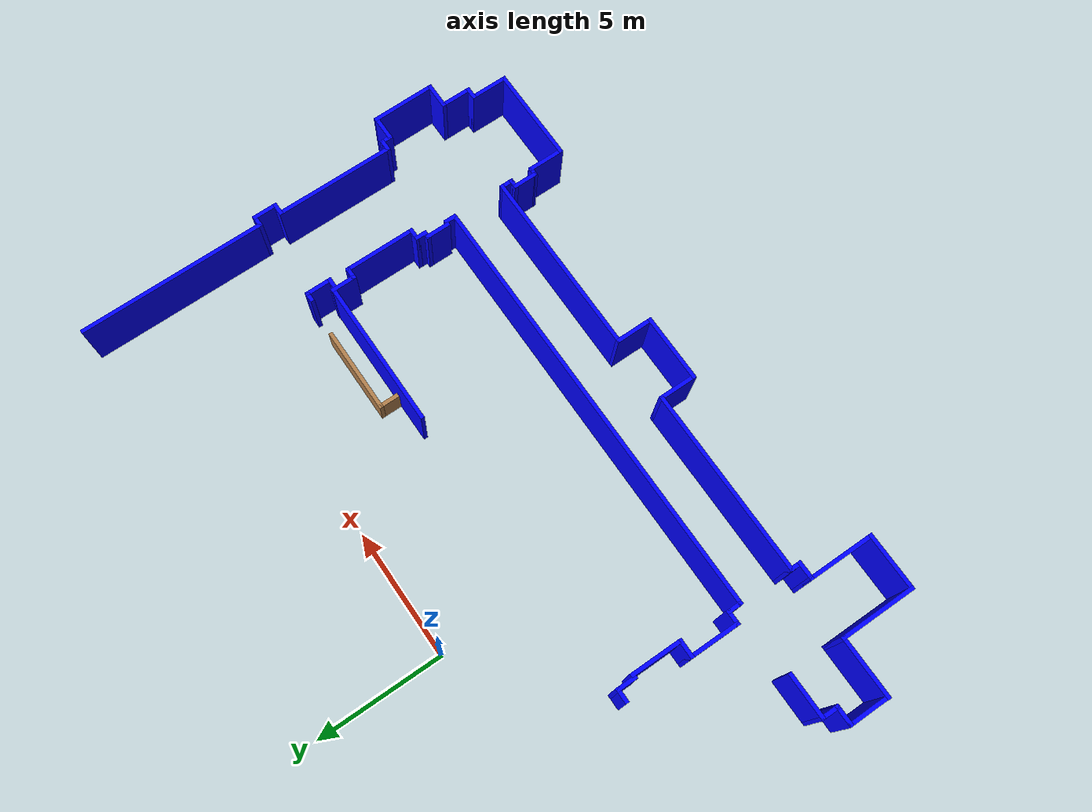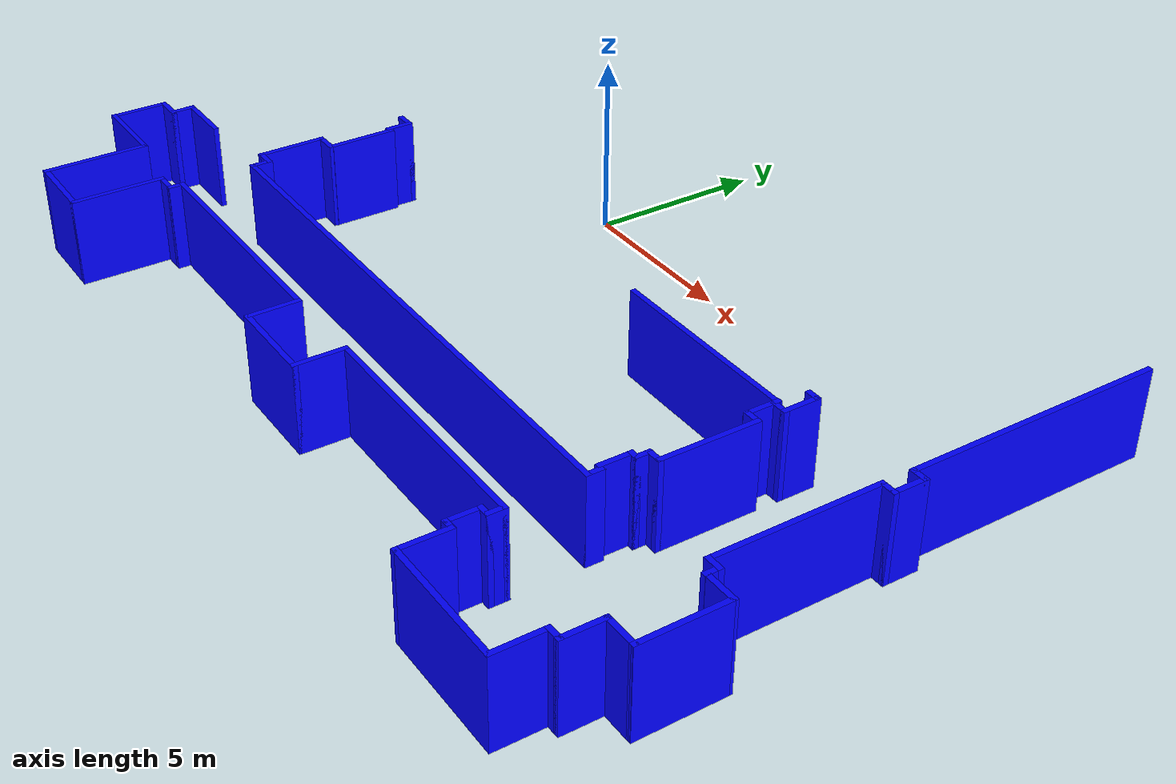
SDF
<sdf version="1.6">
 <model name="A2230_new">
  <pose>3.29262 1.5551 0 0 -0 0</pose>
  <link name="Wall_0">
   <collision name="Wall_0_Collision">
    <geometry><box><size>16.78 0.15 2.5</size></box></geometry>
    <pose>0 0 1.25 0 -0 0</pose>
   </collision>
   <visual name="Wall_0_Visual">
    <pose>0 0 1.25 0 -0 0</pose>
    <geometry><box><size>16.78 0.15 2.5</size></box></geometry>
    <material>
     <ambient>0.0 0.0 1.0 1</ambient>
     <diffuse>0.0 0.0 1.0 1</diffuse>
     <specular>0.0 0.0 1.0 1</specular>
    </material>
    <meta><layer>0</layer></meta>
   </visual>
   <pose>0.709394 -10.3929 0 0 -0 0</pose>
  </link>
  <link name="Wall_151">
   <collision name="Wall_151_Collision">
    <geometry><box><size>0.619 0.15 2.5</size></box></geometry>
    <pose>0 0 1.25 0 -0 0</pose>
   </collision>
   <visual name="Wall_151_Visual">
    <pose>0 0 1.25 0 -0 0</pose>
    <geometry><box><size>0.619 0.15 2.5</size></box></geometry>
    <material>
     <ambient>0.0 0.0 1.0 1</ambient>
     <diffuse>0.0 0.0 1.0 1</diffuse>
     <specular>0.0 0.0 1.0 1</specular>
    </material>
    <meta><layer>0</layer></meta>
   </visual>
   <pose>-7.8475 -9.91068 0 0 -0 0</pose>
  </link>
  <link name="Wall_154">
   <collision name="Wall_154_Collision">
    <geometry><box><size>0.63 0.15 2.5</size></box></geometry>
    <pose>0 0 1.25 0 -0 0</pose>
   </collision>
   <visual name="Wall_154_Visual">
    <pose>0 0 1.25 0 -0 0</pose>
    <geometry><box><size>0.63 0.15 2.5</size></box></geometry>
    <material>
     <ambient>0.0 0.0 1.0 1</ambient>
     <diffuse>0.0 0.0 1.0 1</diffuse>
     <specular>0.0 0.0 1.0 1</specular>
    </material>
    <meta><layer>0</layer></meta>
   </visual>
   <pose>-7.61299 -10.1507 0 0 -0 -1.5708</pose>
  </link>
  <link name="Wall_156">
   <collision name="Wall_156_Collision">
    <geometry><box><size>0.738 0.15 2.5</size></box></geometry>
    <pose>0 0 1.25 0 -0 0</pose>
   </collision>
   <visual name="Wall_156_Visual">
    <pose>0 0 1.25 0 -0 0</pose>
    <geometry><box><size>0.738 0.15 2.5</size></box></geometry>
    <material>
     <ambient>0.0 0.0 1.0 1</ambient>
     <diffuse>0.0 0.0 1.0 1</diffuse>
     <specular>0.0 0.0 1.0 1</specular>
    </material>
    <meta><layer>0</layer></meta>
   </visual>
   <pose>-7.78799 -8.06068 0 0 -0 0</pose>
  </link>
  <link name="Wall_159">
   <collision name="Wall_159_Collision">
    <geometry><box><size>0.811382 0.15 2.5</size></box></geometry>
    <pose>0 0 1.25 0 -0 0</pose>
   </collision>
   <visual name="Wall_159_Visual">
    <pose>0 0 1.25 0 -0 0</pose>
    <geometry><box><size>0.811382 0.15 2.5</size></box></geometry>
    <material>
     <ambient>0.0 0.0 1.0 1</ambient>
     <diffuse>0.0 0.0 1.0 1</diffuse>
     <specular>0.0 0.0 1.0 1</specular>
    </material>
    <meta><layer>0</layer></meta>
   </visual>
   <pose>-7.59855 -5.83255 0 0 -0 -1.5708</pose>
  </link>
  <link name="Wall_161">
   <collision name="Wall_161_Collision">
    <geometry><box><size>0.59 0.15 2.5</size></box></geometry>
    <pose>0 0 1.25 0 -0 0</pose>
   </collision>
   <visual name="Wall_161_Visual">
    <pose>0 0 1.25 0 -0 0</pose>
    <geometry><box><size>0.59 0.15 2.5</size></box></geometry>
    <material>
     <ambient>0.0 0.0 1.0 1</ambient>
     <diffuse>0.0 0.0 1.0 1</diffuse>
     <specular>0.0 0.0 1.0 1</specular>
    </material>
    <meta><layer>0</layer></meta>
   </visual>
   <pose>-7.81855 -5.50193 0 0 -0 3.14159</pose>
  </link>
  <link name="Wall_163">
   <collision name="Wall_163_Collision">
    <geometry><box><size>0.75 0.15 2.5</size></box></geometry>
    <pose>0 0 1.25 0 -0 0</pose>
   </collision>
   <visual name="Wall_163_Visual">
    <pose>0 0 1.25 0 -0 0</pose>
    <geometry><box><size>0.75 0.15 2.5</size></box></geometry>
    <material>
     <ambient>0.0 0.0 1.0 1</ambient>
     <diffuse>0.0 0.0 1.0 1</diffuse>
     <specular>0.0 0.0 1.0 1</specular>
    </material>
    <meta><layer>0</layer></meta>
   </visual>
   <pose>-11.9396 -10.6282 0 0 -0 -1.5708</pose>
  </link>
  <link name="Wall_164">
   <collision name="Wall_164_Collision">
    <geometry><box><size>0.812 0.15 2.5</size></box></geometry>
    <pose>0 0 1.25 0 -0 0</pose>
   </collision>
   <visual name="Wall_164_Visual">
    <pose>0 0 1.25 0 -0 0</pose>
    <geometry><box><size>0.812 0.15 2.5</size></box></geometry>
    <material>
     <ambient>0.0 0.0 1.0 1</ambient>
     <diffuse>0.0 0.0 1.0 1</diffuse>
     <specular>0.0 0.0 1.0 1</specular>
    </material>
    <meta><layer>0</layer></meta>
   </visual>
   <pose>-12.2706 -10.9282 0 0 -0 3.14159</pose>
  </link>
  <link name="Wall_167">
   <collision name="Wall_167_Collision">
    <geometry><box><size>1.662 0.15 2.5</size></box></geometry>
    <pose>0 0 1.25 0 -0 0</pose>
   </collision>
   <visual name="Wall_167_Visual">
    <pose>0 0 1.25 0 -0 0</pose>
    <geometry><box><size>1.662 0.15 2.5</size></box></geometry>
    <material>
     <ambient>0.0 0.0 1.0 1</ambient>
     <diffuse>0.0 0.0 1.0 1</diffuse>
     <specular>0.0 0.0 1.0 1</specular>
    </material>
    <meta><layer>0</layer></meta>
   </visual>
   <pose>-12.6016 -11.6842 0 0 -0 -1.5708</pose>
  </link>
  <link name="Wall_169">
   <collision name="Wall_169_Collision">
    <geometry><box><size>0.5 0.15 2.5</size></box></geometry>
    <pose>0 0 1.25 0 -0 0</pose>
   </collision>
   <visual name="Wall_169_Visual">
    <pose>0 0 1.25 0 -0 0</pose>
    <geometry><box><size>0.5 0.15 2.5</size></box></geometry>
    <material>
     <ambient>0.0 0.0 1.0 1</ambient>
     <diffuse>0.0 0.0 1.0 1</diffuse>
     <specular>0.0 0.0 1.0 1</specular>
    </material>
    <meta><layer>0</layer></meta>
   </visual>
   <pose>9.25504 -8.81578 0 0 -0 3.14159</pose>
  </link>
  <link name="Wall_170">
   <collision name="Wall_170_Collision">
    <geometry><box><size>0.5 0.15 2.5</size></box></geometry>
    <pose>0 0 1.25 0 -0 0</pose>
   </collision>
   <visual name="Wall_170_Visual">
    <pose>0 0 1.25 0 -0 0</pose>
    <geometry><box><size>0.5 0.15 2.5</size></box></geometry>
    <material>
     <ambient>0.0 0.0 1.0 1</ambient>
     <diffuse>0.0 0.0 1.0 1</diffuse>
     <specular>0.0 0.0 1.0 1</specular>
    </material>
    <meta><layer>0</layer></meta>
   </visual>
   <pose>9.08004 -8.99078 0 0 -0 -1.5708</pose>
  </link>
  <link name="Wall_171">
   <collision name="Wall_171_Collision">
    <geometry><box><size>0.331 0.15 2.5</size></box></geometry>
    <pose>0 0 1.25 0 -0 0</pose>
   </collision>
   <visual name="Wall_171_Visual">
    <pose>0 0 1.25 0 -0 0</pose>
    <geometry><box><size>0.331 0.15 2.5</size></box></geometry>
    <material>
     <ambient>0.0 0.0 1.0 1</ambient>
     <diffuse>0.0 0.0 1.0 1</diffuse>
     <specular>0.0 0.0 1.0 1</specular>
    </material>
    <meta><layer>0</layer></meta>
   </visual>
   <pose>8.98954 -9.16578 0 0 -0 3.14159</pose>
  </link>
  <link name="Wall_173">
   <collision name="Wall_173_Collision">
    <geometry><box><size>0.5 0.15 2.5</size></box></geometry>
    <pose>0 0 1.25 0 -0 0</pose>
   </collision>
   <visual name="Wall_173_Visual">
    <pose>0 0 1.25 0 -0 0</pose>
    <geometry><box><size>0.5 0.15 2.5</size></box></geometry>
    <material>
     <ambient>0.0 0.0 1.0 1</ambient>
     <diffuse>0.0 0.0 1.0 1</diffuse>
     <specular>0.0 0.0 1.0 1</specular>
    </material>
    <meta><layer>0</layer></meta>
   </visual>
   <pose>9.0244 -10.2179 0 0 -0 1.5708</pose>
  </link>
  <link name="Wall_177">
   <collision name="Wall_177_Collision">
    <geometry><box><size>0.973 0.15 2.5</size></box></geometry>
    <pose>0 0 1.25 0 -0 0</pose>
   </collision>
   <visual name="Wall_177_Visual">
    <pose>0 0 1.25 0 -0 0</pose>
    <geometry><box><size>0.973 0.15 2.5</size></box></geometry>
    <material>
     <ambient>0.0 0.0 1.0 1</ambient>
     <diffuse>0.0 0.0 1.0 1</diffuse>
     <specular>0.0 0.0 1.0 1</specular>
    </material>
    <meta><layer>0</layer></meta>
   </visual>
   <pose>8.90416 -9.58684 0 0 -0 1.5708</pose>
  </link>
  <link name="Wall_179">
   <collision name="Wall_179_Collision">
    <geometry><box><size>0.5 0.15 2.5</size></box></geometry>
    <pose>0 0 1.25 0 -0 0</pose>
   </collision>
   <visual name="Wall_179_Visual">
    <pose>0 0 1.25 0 -0 0</pose>
    <geometry><box><size>0.5 0.15 2.5</size></box></geometry>
    <material>
     <ambient>0.0 0.0 1.0 1</ambient>
     <diffuse>0.0 0.0 1.0 1</diffuse>
     <specular>0.0 0.0 1.0 1</specular>
    </material>
    <meta><layer>0</layer></meta>
   </visual>
   <pose>12.7915 -9.87883 0 0 -0 0</pose>
  </link>
  <link name="Wall_180">
   <collision name="Wall_180_Collision">
    <geometry><box><size>0.48 0.15 2.5</size></box></geometry>
    <pose>0 0 1.25 0 -0 0</pose>
   </collision>
   <visual name="Wall_180_Visual">
    <pose>0 0 1.25 0 -0 0</pose>
    <geometry><box><size>0.48 0.15 2.5</size></box></geometry>
    <material>
     <ambient>0.0 0.0 1.0 1</ambient>
     <diffuse>0.0 0.0 1.0 1</diffuse>
     <specular>0.0 0.0 1.0 1</specular>
    </material>
    <meta><layer>0</layer></meta>
   </visual>
   <pose>12.9665 -10.0438 0 0 -0 -1.5708</pose>
  </link>
  <link name="Wall_182">
   <collision name="Wall_182_Collision">
    <geometry><box><size>0.5 0.15 2.5</size></box></geometry>
    <pose>0 0 1.25 0 -0 0</pose>
   </collision>
   <visual name="Wall_182_Visual">
    <pose>0 0 1.25 0 -0 0</pose>
    <geometry><box><size>0.5 0.15 2.5</size></box></geometry>
    <material>
     <ambient>0.0 0.0 1.0 1</ambient>
     <diffuse>0.0 0.0 1.0 1</diffuse>
     <specular>0.0 0.0 1.0 1</specular>
    </material>
    <meta><layer>0</layer></meta>
   </visual>
   <pose>12.8116 -4.4884 0 0 -0 0</pose>
  </link>
  <link name="Wall_183">
   <collision name="Wall_183_Collision">
    <geometry><box><size>1 0.15 2.5</size></box></geometry>
    <pose>0 0 1.25 0 -0 0</pose>
   </collision>
   <visual name="Wall_183_Visual">
    <pose>0 0 1.25 0 -0 0</pose>
    <geometry><box><size>1 0.15 2.5</size></box></geometry>
    <material>
     <ambient>0.0 0.0 1.0 1</ambient>
     <diffuse>0.0 0.0 1.0 1</diffuse>
     <specular>0.0 0.0 1.0 1</specular>
    </material>
    <meta><layer>0</layer></meta>
   </visual>
   <pose>12.9866 -4.9134 0 0 -0 -1.5708</pose>
  </link>
  <link name="Wall_184">
   <collision name="Wall_184_Collision">
    <geometry><box><size>0.5 0.15 2.5</size></box></geometry>
    <pose>0 0 1.25 0 -0 0</pose>
   </collision>
   <visual name="Wall_184_Visual">
    <pose>0 0 1.25 0 -0 0</pose>
    <geometry><box><size>0.5 0.15 2.5</size></box></geometry>
    <material>
     <ambient>0.0 0.0 1.0 1</ambient>
     <diffuse>0.0 0.0 1.0 1</diffuse>
     <specular>0.0 0.0 1.0 1</specular>
    </material>
    <meta><layer>0</layer></meta>
   </visual>
   <pose>12.8116 -5.3384 0 0 -0 3.14159</pose>
  </link>
  <link name="Wall_186">
   <collision name="Wall_186_Collision">
    <geometry><box><size>0.5 0.15 2.5</size></box></geometry>
    <pose>0 0 1.25 0 -0 0</pose>
   </collision>
   <visual name="Wall_186_Visual">
    <pose>0 0 1.25 0 -0 0</pose>
    <geometry><box><size>0.5 0.15 2.5</size></box></geometry>
    <material>
     <ambient>0.0 0.0 1.0 1</ambient>
     <diffuse>0.0 0.0 1.0 1</diffuse>
     <specular>0.0 0.0 1.0 1</specular>
    </material>
    <meta><layer>0</layer></meta>
   </visual>
   <pose>9.25504 -6.15578 0 0 -0 3.14159</pose>
  </link>
  <link name="Wall_191">
   <collision name="Wall_191_Collision">
    <geometry><box><size>5.75 0.15 2.5</size></box></geometry>
    <pose>0 0 1.25 0 -0 0</pose>
   </collision>
   <visual name="Wall_191_Visual">
    <pose>0 0 1.25 0 -0 0</pose>
    <geometry><box><size>5.75 0.15 2.5</size></box></geometry>
    <material>
     <ambient>0.0 0.0 1.0 1</ambient>
     <diffuse>0.0 0.0 1.0 1</diffuse>
     <specular>0.0 0.0 1.0 1</specular>
    </material>
    <meta><layer>0</layer></meta>
   </visual>
   <pose>6.27642 -5.32371 0 0 -0 0</pose>
  </link>
  <link name="Wall_193">
   <collision name="Wall_193_Collision">
    <geometry><box><size>0.959 0.15 1.2</size></box></geometry>
    <pose>0 0 0.6 0 -0 0</pose>
   </collision>
   <visual name="Wall_193_Visual">
    <pose>0 0 0.6 0 -0 0</pose>
    <geometry><box><size>0.959 0.15 1.2</size></box></geometry>
    <material>
     <script><uri>file://media/materials/scripts/gazebo.material</uri><name>Gazebo/Wood</name></script>
     <ambient>1 1 1 1</ambient>
    </material>
    <meta><layer>0</layer></meta>
   </visual>
   <pose>4.96438 -4.9156 0 0 -0 -1.5708</pose>
  </link>
  <link name="Wall_199">
   <collision name="Wall_199_Collision">
    <geometry><box><size>0.372 0.15 2.5</size></box></geometry>
    <pose>0 0 1.25 0 -0 0</pose>
   </collision>
   <visual name="Wall_199_Visual">
    <pose>0 0 1.25 0 -0 0</pose>
    <geometry><box><size>0.372 0.15 2.5</size></box></geometry>
    <material>
     <ambient>0.0 0.0 1.0 1</ambient>
     <diffuse>0.0 0.0 1.0 1</diffuse>
     <specular>0.0 0.0 1.0 1</specular>
    </material>
    <meta><layer>0</layer></meta>
   </visual>
   <pose>9.29924 -4.49283 0 0 -0 0</pose>
  </link>
  <link name="Wall_2">
   <collision name="Wall_2_Collision">
    <geometry><box><size>2 0.15 2.5</size></box></geometry>
    <pose>0 0 1.25 0 -0 0</pose>
   </collision>
   <visual name="Wall_2_Visual">
    <pose>0 0 1.25 0 -0 0</pose>
    <geometry><box><size>2 0.15 2.5</size></box></geometry>
    <material>
     <ambient>0.0 0.0 1.0 1</ambient>
     <diffuse>0.0 0.0 1.0 1</diffuse>
     <specular>0.0 0.0 1.0 1</specular>
    </material>
    <meta><layer>0</layer></meta>
   </visual>
   <pose>-8.08199 -8.98568 0 0 -0 1.5708</pose>
  </link>
  <link name="Wall_201">
   <collision name="Wall_201_Collision">
    <geometry><box><size>1.073 0.15 2.5</size></box></geometry>
    <pose>0 0 1.25 0 -0 0</pose>
   </collision>
   <visual name="Wall_201_Visual">
    <pose>0 0 1.25 0 -0 0</pose>
    <geometry><box><size>1.073 0.15 2.5</size></box></geometry>
    <material>
     <ambient>0.0 0.0 1.0 1</ambient>
     <diffuse>0.0 0.0 1.0 1</diffuse>
     <specular>0.0 0.0 1.0 1</specular>
    </material>
    <meta><layer>0</layer></meta>
   </visual>
   <pose>9.45059 -4.95433 0 0 -0 -1.5708</pose>
  </link>
  <link name="Wall_203">
   <collision name="Wall_203_Collision">
    <geometry><box><size>0.5 0.15 2.5</size></box></geometry>
    <pose>0 0 1.25 0 -0 0</pose>
   </collision>
   <visual name="Wall_203_Visual">
    <pose>0 0 1.25 0 -0 0</pose>
    <geometry><box><size>0.5 0.15 2.5</size></box></geometry>
    <material>
     <ambient>0.0 0.0 1.0 1</ambient>
     <diffuse>0.0 0.0 1.0 1</diffuse>
     <specular>0.0 0.0 1.0 1</specular>
    </material>
    <meta><layer>0</layer></meta>
   </visual>
   <pose>9.27559 -5.41583 0 0 -0 3.14159</pose>
  </link>
  <link name="Wall_207">
   <collision name="Wall_207_Collision">
    <geometry><box><size>1 0.15 2.5</size></box></geometry>
    <pose>0 0 1.25 0 -0 0</pose>
   </collision>
   <visual name="Wall_207_Visual">
    <pose>0 0 1.25 0 -0 0</pose>
    <geometry><box><size>1 0.15 2.5</size></box></geometry>
    <material>
     <ambient>0.0 0.0 1.0 1</ambient>
     <diffuse>0.0 0.0 1.0 1</diffuse>
     <specular>0.0 0.0 1.0 1</specular>
    </material>
    <meta><layer>0</layer></meta>
   </visual>
   <pose>9.0658 -5.72938 0 0 -0 1.5708</pose>
  </link>
  <link name="Wall_32">
   <collision name="Wall_32_Collision">
    <geometry><box><size>3.368 0.15 1.2</size></box></geometry>
    <pose>0 0 0.6 0 -0 0</pose>
   </collision>
   <visual name="Wall_32_Visual">
    <pose>0 0 0.6 0 -0 0</pose>
    <geometry><box><size>3.368 0.15 1.2</size></box></geometry>
    <material>
     <script><uri>file://media/materials/scripts/gazebo.material</uri><name>Gazebo/Wood</name></script>
     <ambient>1 1 1 1</ambient>
    </material>
    <meta><layer>0</layer></meta>
   </visual>
   <pose>6.57338 -4.5111 0 0 -0 3.14159</pose>
  </link>
  <link name="Wall_4">
   <collision name="Wall_4_Collision">
    <geometry><box><size>1.942 0.15 2.5</size></box></geometry>
    <pose>0 0 1.25 0 -0 0</pose>
   </collision>
   <visual name="Wall_4_Visual">
    <pose>0 0 1.25 0 -0 0</pose>
    <geometry><box><size>1.942 0.15 2.5</size></box></geometry>
    <material>
     <ambient>0.0 0.0 1.0 1</ambient>
     <diffuse>0.0 0.0 1.0 1</diffuse>
     <specular>0.0 0.0 1.0 1</specular>
    </material>
    <meta><layer>0</layer></meta>
   </visual>
   <pose>-7.48492 -7.05733 0 0 -0 1.5708</pose>
  </link>
  <link name="Wall_48">
   <collision name="Wall_48_Collision">
    <geometry><box><size>2.81 0.15 2.5</size></box></geometry>
    <pose>0 0 1.25 0 -0 0</pose>
   </collision>
   <visual name="Wall_48_Visual">
    <pose>0 0 1.25 0 -0 0</pose>
    <geometry><box><size>2.81 0.15 2.5</size></box></geometry>
    <material>
     <ambient>0.0 0.0 1.0 1</ambient>
     <diffuse>0.0 0.0 1.0 1</diffuse>
     <specular>0.0 0.0 1.0 1</specular>
    </material>
    <meta><layer>0</layer></meta>
   </visual>
   <pose>9.43004 -7.48578 0 0 -0 -1.5708</pose>
  </link>
  <link name="Wall_53">
   <collision name="Wall_53_Collision">
    <geometry><box><size>1.768 0.15 2.5</size></box></geometry>
    <pose>0 0 1.25 0 -0 0</pose>
   </collision>
   <visual name="Wall_53_Visual">
    <pose>0 0 1.25 0 -0 0</pose>
    <geometry><box><size>1.768 0.15 2.5</size></box></geometry>
    <material>
     <ambient>0.0 0.0 1.0 1</ambient>
     <diffuse>0.0 0.0 1.0 1</diffuse>
     <specular>0.0 0.0 1.0 1</specular>
    </material>
    <meta><layer>0</layer></meta>
   </visual>
   <pose>-11.1306 -10.3282 0 0 -0 -3.14153</pose>
  </link>
  <link name="Wall_55">
   <collision name="Wall_55_Collision">
    <geometry><box><size>2.4 0.15 2.5</size></box></geometry>
    <pose>0 0 1.25 0 -0 0</pose>
   </collision>
   <visual name="Wall_55_Visual">
    <pose>0 0 1.25 0 -0 0</pose>
    <geometry><box><size>2.4 0.15 2.5</size></box></geometry>
    <material>
     <ambient>0.0 0.0 1.0 1</ambient>
     <diffuse>0.0 0.0 1.0 1</diffuse>
     <specular>0.0 0.0 1.0 1</specular>
    </material>
    <meta><layer>0</layer></meta>
   </visual>
   <pose>-11.4894 -12.4513 0 0 -0 0</pose>
  </link>
  <link name="Wall_57">
   <collision name="Wall_57_Collision">
    <geometry><box><size>3 0.15 2.5</size></box></geometry>
    <pose>0 0 1.25 0 -0 0</pose>
   </collision>
   <visual name="Wall_57_Visual">
    <pose>0 0 1.25 0 -0 0</pose>
    <geometry><box><size>3 0.15 2.5</size></box></geometry>
    <material>
     <ambient>0.0 0.0 1.0 1</ambient>
     <diffuse>0.0 0.0 1.0 1</diffuse>
     <specular>0.0 0.0 1.0 1</specular>
    </material>
    <meta><layer>0</layer></meta>
   </visual>
   <pose>-10.3644 -13.8763 0 0 -0 -1.5708</pose>
  </link>
  <link name="Wall_58">
   <collision name="Wall_58_Collision">
    <geometry><box><size>2.25 0.15 2.5</size></box></geometry>
    <pose>0 0 1.25 0 -0 0</pose>
   </collision>
   <visual name="Wall_58_Visual">
    <pose>0 0 1.25 0 -0 0</pose>
    <geometry><box><size>2.25 0.15 2.5</size></box></geometry>
    <material>
     <ambient>0.0 0.0 1.0 1</ambient>
     <diffuse>0.0 0.0 1.0 1</diffuse>
     <specular>0.0 0.0 1.0 1</specular>
    </material>
    <meta><layer>0</layer></meta>
   </visual>
   <pose>-9.31444 -15.3013 0 0 -0 0</pose>
  </link>
  <link name="Wall_59">
   <collision name="Wall_59_Collision">
    <geometry><box><size>2.65 0.15 2.5</size></box></geometry>
    <pose>0 0 1.25 0 -0 0</pose>
   </collision>
   <visual name="Wall_59_Visual">
    <pose>0 0 1.25 0 -0 0</pose>
    <geometry><box><size>2.65 0.15 2.5</size></box></geometry>
    <material>
     <ambient>0.0 0.0 1.0 1</ambient>
     <diffuse>0.0 0.0 1.0 1</diffuse>
     <specular>0.0 0.0 1.0 1</specular>
    </material>
    <meta><layer>0</layer></meta>
   </visual>
   <pose>-8.26444 -14.0513 0 0 -0 1.5708</pose>
  </link>
  <link name="Wall_61">
   <collision name="Wall_61_Collision">
    <geometry><box><size>0.75 0.15 2.5</size></box></geometry>
    <pose>0 0 1.25 0 -0 0</pose>
   </collision>
   <visual name="Wall_61_Visual">
    <pose>0 0 1.25 0 -0 0</pose>
    <geometry><box><size>0.75 0.15 2.5</size></box></geometry>
    <material>
     <ambient>0.0 0.0 1.0 1</ambient>
     <diffuse>0.0 0.0 1.0 1</diffuse>
     <specular>0.0 0.0 1.0 1</specular>
    </material>
    <meta><layer>0</layer></meta>
   </visual>
   <pose>-7.96444 -12.8013 0 0 -0 0</pose>
  </link>
  <link name="Wall_62">
   <collision name="Wall_62_Collision">
    <geometry><box><size>0.5 0.15 2.5</size></box></geometry>
    <pose>0 0 1.25 0 -0 0</pose>
   </collision>
   <visual name="Wall_62_Visual">
    <pose>0 0 1.25 0 -0 0</pose>
    <geometry><box><size>0.5 0.15 2.5</size></box></geometry>
    <material>
     <ambient>0.0 0.0 1.0 1</ambient>
     <diffuse>0.0 0.0 1.0 1</diffuse>
     <specular>0.0 0.0 1.0 1</specular>
    </material>
    <meta><layer>0</layer></meta>
   </visual>
   <pose>-7.66444 -12.6263 0 0 -0 1.5708</pose>
  </link>
  <link name="Wall_63">
   <collision name="Wall_63_Collision">
    <geometry><box><size>7.25 0.15 2.5</size></box></geometry>
    <pose>0 0 1.25 0 -0 0</pose>
   </collision>
   <visual name="Wall_63_Visual">
    <pose>0 0 1.25 0 -0 0</pose>
    <geometry><box><size>7.25 0.15 2.5</size></box></geometry>
    <material>
     <ambient>0.0 0.0 1.0 1</ambient>
     <diffuse>0.0 0.0 1.0 1</diffuse>
     <specular>0.0 0.0 1.0 1</specular>
    </material>
    <meta><layer>0</layer></meta>
   </visual>
   <pose>-4.11444 -12.4513 0 0 -0 0</pose>
  </link>
  <link name="Wall_64">
   <collision name="Wall_64_Collision">
    <geometry><box><size>1.5 0.15 2.5</size></box></geometry>
    <pose>0 0 1.25 0 -0 0</pose>
   </collision>
   <visual name="Wall_64_Visual">
    <pose>0 0 1.25 0 -0 0</pose>
    <geometry><box><size>1.5 0.15 2.5</size></box></geometry>
    <material>
     <ambient>0.0 0.0 1.0 1</ambient>
     <diffuse>0.0 0.0 1.0 1</diffuse>
     <specular>0.0 0.0 1.0 1</specular>
    </material>
    <meta><layer>0</layer></meta>
   </visual>
   <pose>-0.564437 -13.1263 0 0 -0 -1.5708</pose>
  </link>
  <link name="Wall_65">
   <collision name="Wall_65_Collision">
    <geometry><box><size>2.65 0.15 2.5</size></box></geometry>
    <pose>0 0 1.25 0 -0 0</pose>
   </collision>
   <visual name="Wall_65_Visual">
    <pose>0 0 1.25 0 -0 0</pose>
    <geometry><box><size>2.65 0.15 2.5</size></box></geometry>
    <material>
     <ambient>0.0 0.0 1.0 1</ambient>
     <diffuse>0.0 0.0 1.0 1</diffuse>
     <specular>0.0 0.0 1.0 1</specular>
    </material>
    <meta><layer>0</layer></meta>
   </visual>
   <pose>0.685563 -13.8013 0 0 -0 0</pose>
  </link>
  <link name="Wall_67">
   <collision name="Wall_67_Collision">
    <geometry><box><size>1.5 0.15 2.5</size></box></geometry>
    <pose>0 0 1.25 0 -0 0</pose>
   </collision>
   <visual name="Wall_67_Visual">
    <pose>0 0 1.25 0 -0 0</pose>
    <geometry><box><size>1.5 0.15 2.5</size></box></geometry>
    <material>
     <ambient>0.0 0.0 1.0 1</ambient>
     <diffuse>0.0 0.0 1.0 1</diffuse>
     <specular>0.0 0.0 1.0 1</specular>
    </material>
    <meta><layer>0</layer></meta>
   </visual>
   <pose>1.93556 -13.1263 0 0 -0 1.5708</pose>
  </link>
  <link name="Wall_68">
   <collision name="Wall_68_Collision">
    <geometry><box><size>7.25 0.15 2.5</size></box></geometry>
    <pose>0 0 1.25 0 -0 0</pose>
   </collision>
   <visual name="Wall_68_Visual">
    <pose>0 0 1.25 0 -0 0</pose>
    <geometry><box><size>7.25 0.15 2.5</size></box></geometry>
    <material>
     <ambient>0.0 0.0 1.0 1</ambient>
     <diffuse>0.0 0.0 1.0 1</diffuse>
     <specular>0.0 0.0 1.0 1</specular>
    </material>
    <meta><layer>0</layer></meta>
   </visual>
   <pose>5.48556 -12.4513 0 0 -0 0</pose>
  </link>
  <link name="Wall_69">
   <collision name="Wall_69_Collision">
    <geometry><box><size>0.55 0.15 2.5</size></box></geometry>
    <pose>0 0 1.25 0 -0 0</pose>
   </collision>
   <visual name="Wall_69_Visual">
    <pose>0 0 1.25 0 -0 0</pose>
    <geometry><box><size>0.55 0.15 2.5</size></box></geometry>
    <material>
     <ambient>0.0 0.0 1.0 1</ambient>
     <diffuse>0.0 0.0 1.0 1</diffuse>
     <specular>0.0 0.0 1.0 1</specular>
    </material>
    <meta><layer>0</layer></meta>
   </visual>
   <pose>9.03556 -12.6513 0 0 -0 -1.5708</pose>
  </link>
  <link name="Wall_73">
   <collision name="Wall_73_Collision">
    <geometry><box><size>1.44022 0.15 2.5</size></box></geometry>
    <pose>0 0 1.25 0 -0 0</pose>
   </collision>
   <visual name="Wall_73_Visual">
    <pose>0 0 1.25 0 -0 0</pose>
    <geometry><box><size>1.44022 0.15 2.5</size></box></geometry>
    <material>
     <ambient>0.0 0.0 1.0 1</ambient>
     <diffuse>0.0 0.0 1.0 1</diffuse>
     <specular>0.0 0.0 1.0 1</specular>
    </material>
    <meta><layer>0</layer></meta>
   </visual>
   <pose>9.03538 -14.3561 0 0 -0 -1.5708</pose>
  </link>
  <link name="Wall_74">
   <collision name="Wall_74_Collision">
    <geometry><box><size>3.75 0.15 2.5</size></box></geometry>
    <pose>0 0 1.25 0 -0 0</pose>
   </collision>
   <visual name="Wall_74_Visual">
    <pose>0 0 1.25 0 -0 0</pose>
    <geometry><box><size>3.75 0.15 2.5</size></box></geometry>
    <material>
     <ambient>0.0 0.0 1.0 1</ambient>
     <diffuse>0.0 0.0 1.0 1</diffuse>
     <specular>0.0 0.0 1.0 1</specular>
    </material>
    <meta><layer>0</layer></meta>
   </visual>
   <pose>10.8355 -15.0012 0 0 -0 -6.2e-05</pose>
  </link>
  <link name="Wall_75">
   <collision name="Wall_75_Collision">
    <geometry><box><size>1.5 0.15 2.5</size></box></geometry>
    <pose>0 0 1.25 0 -0 0</pose>
   </collision>
   <visual name="Wall_75_Visual">
    <pose>0 0 1.25 0 -0 0</pose>
    <geometry><box><size>1.5 0.15 2.5</size></box></geometry>
    <material>
     <ambient>0.0 0.0 1.0 1</ambient>
     <diffuse>0.0 0.0 1.0 1</diffuse>
     <specular>0.0 0.0 1.0 1</specular>
    </material>
    <meta><layer>0</layer></meta>
   </visual>
   <pose>12.6356 -14.3263 0 0 -0 1.5708</pose>
  </link>
  <link name="Wall_76">
   <collision name="Wall_76_Collision">
    <geometry><box><size>0.5 0.15 2.5</size></box></geometry>
    <pose>0 0 1.25 0 -0 0</pose>
   </collision>
   <visual name="Wall_76_Visual">
    <pose>0 0 1.25 0 -0 0</pose>
    <geometry><box><size>0.5 0.15 2.5</size></box></geometry>
    <material>
     <ambient>0.0 0.0 1.0 1</ambient>
     <diffuse>0.0 0.0 1.0 1</diffuse>
     <specular>0.0 0.0 1.0 1</specular>
    </material>
    <meta><layer>0</layer></meta>
   </visual>
   <pose>12.8106 -13.6513 0 0 -0 0</pose>
  </link>
  <link name="Wall_77">
   <collision name="Wall_77_Collision">
    <geometry><box><size>1.25 0.15 2.5</size></box></geometry>
    <pose>0 0 1.25 0 -0 0</pose>
   </collision>
   <visual name="Wall_77_Visual">
    <pose>0 0 1.25 0 -0 0</pose>
    <geometry><box><size>1.25 0.15 2.5</size></box></geometry>
    <material>
     <ambient>0.0 0.0 1.0 1</ambient>
     <diffuse>0.0 0.0 1.0 1</diffuse>
     <specular>0.0 0.0 1.0 1</specular>
    </material>
    <meta><layer>0</layer></meta>
   </visual>
   <pose>12.9856 -13.1013 0 0 -0 1.5708</pose>
  </link>
  <link name="Wall_78">
   <collision name="Wall_78_Collision">
    <geometry><box><size>1.02011 0.15 2.5</size></box></geometry>
    <pose>0 0 1.25 0 -0 0</pose>
   </collision>
   <visual name="Wall_78_Visual">
    <pose>0 0 1.25 0 -0 0</pose>
    <geometry><box><size>1.02011 0.15 2.5</size></box></geometry>
    <material>
     <ambient>0.0 0.0 1.0 1</ambient>
     <diffuse>0.0 0.0 1.0 1</diffuse>
     <specular>0.0 0.0 1.0 1</specular>
    </material>
    <meta><layer>0</layer></meta>
   </visual>
   <pose>13.4206 -12.5513 0 0 -0 0</pose>
  </link>
  <link name="Wall_79">
   <collision name="Wall_79_Collision">
    <geometry><box><size>2.5 0.15 2.5</size></box></geometry>
    <pose>0 0 1.25 0 -0 0</pose>
   </collision>
   <visual name="Wall_79_Visual">
    <pose>0 0 1.25 0 -0 0</pose>
    <geometry><box><size>2.5 0.15 2.5</size></box></geometry>
    <material>
     <ambient>0.0 0.0 1.0 1</ambient>
     <diffuse>0.0 0.0 1.0 1</diffuse>
     <specular>0.0 0.0 1.0 1</specular>
    </material>
    <meta><layer>0</layer></meta>
   </visual>
   <pose>13.8657 -11.3763 0 0 -0 1.57936</pose>
  </link>
  <link name="Wall_80">
   <collision name="Wall_80_Collision">
    <geometry><box><size>0.972 0.15 2.5</size></box></geometry>
    <pose>0 0 1.25 0 -0 0</pose>
   </collision>
   <visual name="Wall_80_Visual">
    <pose>0 0 1.25 0 -0 0</pose>
    <geometry><box><size>0.972 0.15 2.5</size></box></geometry>
    <material>
     <ambient>0.0 0.0 1.0 1</ambient>
     <diffuse>0.0 0.0 1.0 1</diffuse>
     <specular>0.0 0.0 1.0 1</specular>
    </material>
    <meta><layer>0</layer></meta>
   </visual>
   <pose>13.4447 -10.2013 0 0 -0 3.14159</pose>
  </link>
  <link name="Wall_83">
   <collision name="Wall_83_Collision">
    <geometry><box><size>0.4 0.15 2.5</size></box></geometry>
    <pose>0 0 1.25 0 -0 0</pose>
   </collision>
   <visual name="Wall_83_Visual">
    <pose>0 0 1.25 0 -0 0</pose>
    <geometry><box><size>0.4 0.15 2.5</size></box></geometry>
    <material>
     <ambient>0.0 0.0 1.0 1</ambient>
     <diffuse>0.0 0.0 1.0 1</diffuse>
     <specular>0.0 0.0 1.0 1</specular>
    </material>
    <meta><layer>0</layer></meta>
   </visual>
   <pose>8.91056 -12.8513 0 0 -0 3.14159</pose>
  </link>
  <link name="Wall_86">
   <collision name="Wall_86_Collision">
    <geometry><box><size>1 0.15 2.5</size></box></geometry>
    <pose>0 0 1.25 0 -0 0</pose>
   </collision>
   <visual name="Wall_86_Visual">
    <pose>0 0 1.25 0 -0 0</pose>
    <geometry><box><size>1 0.15 2.5</size></box></geometry>
    <material>
     <ambient>0.0 0.0 1.0 1</ambient>
     <diffuse>0.0 0.0 1.0 1</diffuse>
     <specular>0.0 0.0 1.0 1</specular>
    </material>
    <meta><layer>0</layer></meta>
   </visual>
   <pose>8.78556 -13.2763 0 0 -0 -1.5708</pose>
  </link>
  <link name="Wall_87">
   <collision name="Wall_87_Collision">
    <geometry><box><size>0.38 0.15 2.5</size></box></geometry>
    <pose>0 0 1.25 0 -0 0</pose>
   </collision>
   <visual name="Wall_87_Visual">
    <pose>0 0 1.25 0 -0 0</pose>
    <geometry><box><size>0.38 0.15 2.5</size></box></geometry>
    <material>
     <ambient>0.0 0.0 1.0 1</ambient>
     <diffuse>0.0 0.0 1.0 1</diffuse>
     <specular>0.0 0.0 1.0 1</specular>
    </material>
    <meta><layer>0</layer></meta>
   </visual>
   <pose>8.90056 -13.7013 0 0 -0 0</pose>
  </link>
  <link name="Wall_90">
   <collision name="Wall_90_Collision">
    <geometry><box><size>4.69 0.15 2.5</size></box></geometry>
    <pose>0 0 1.25 0 -0 0</pose>
   </collision>
   <visual name="Wall_90_Visual">
    <pose>0 0 1.25 0 -0 0</pose>
    <geometry><box><size>4.69 0.15 2.5</size></box></geometry>
    <material>
     <ambient>0.0 0.0 1.0 1</ambient>
     <diffuse>0.0 0.0 1.0 1</diffuse>
     <specular>0.0 0.0 1.0 1</specular>
    </material>
    <meta><layer>0</layer></meta>
   </visual>
   <pose>12.6165 -7.60883 0 0 -0 1.5708</pose>
  </link>
  <link name="Wall_92">
   <collision name="Wall_92_Collision">
    <geometry><box><size>7.3 0.15 2.5</size></box></geometry>
    <pose>0 0 1.25 0 -0 0</pose>
   </collision>
   <visual name="Wall_92_Visual">
    <pose>0 0 1.25 0 -0 0</pose>
    <geometry><box><size>7.3 0.15 2.5</size></box></geometry>
    <material>
     <ambient>0.0 0.0 1.0 1</ambient>
     <diffuse>0.0 0.0 1.0 1</diffuse>
     <specular>0.0 0.0 1.0 1</specular>
    </material>
    <meta><layer>0</layer></meta>
   </visual>
   <pose>12.6366 -0.913396 0 0 -0 1.5708</pose>
  </link>
  <static>1</static>
 </model>
</sdf>
